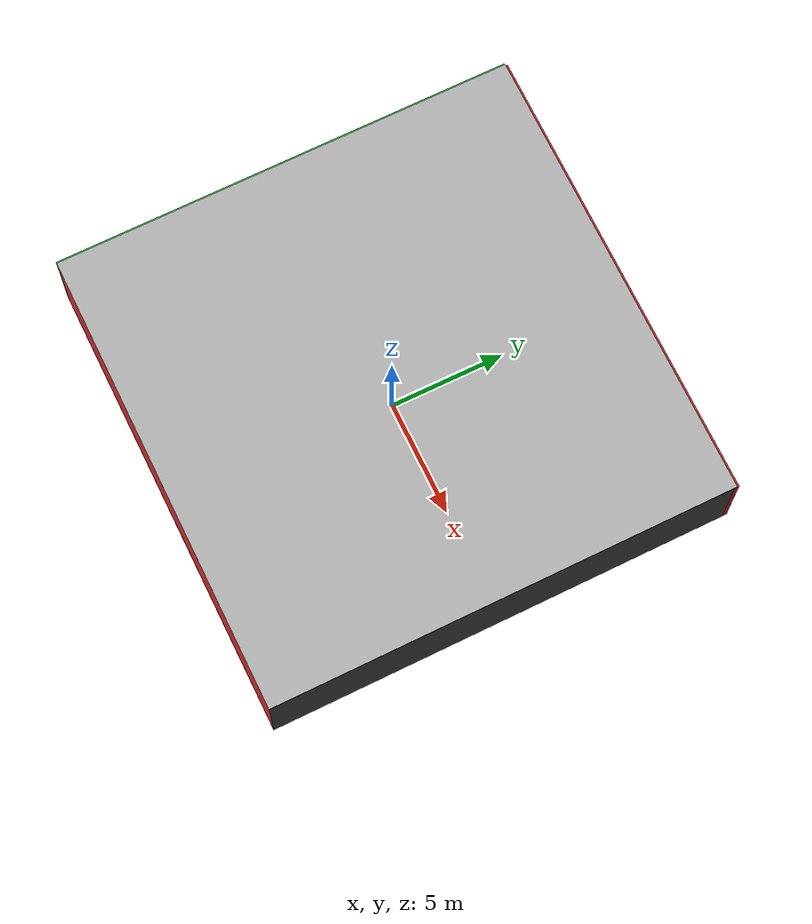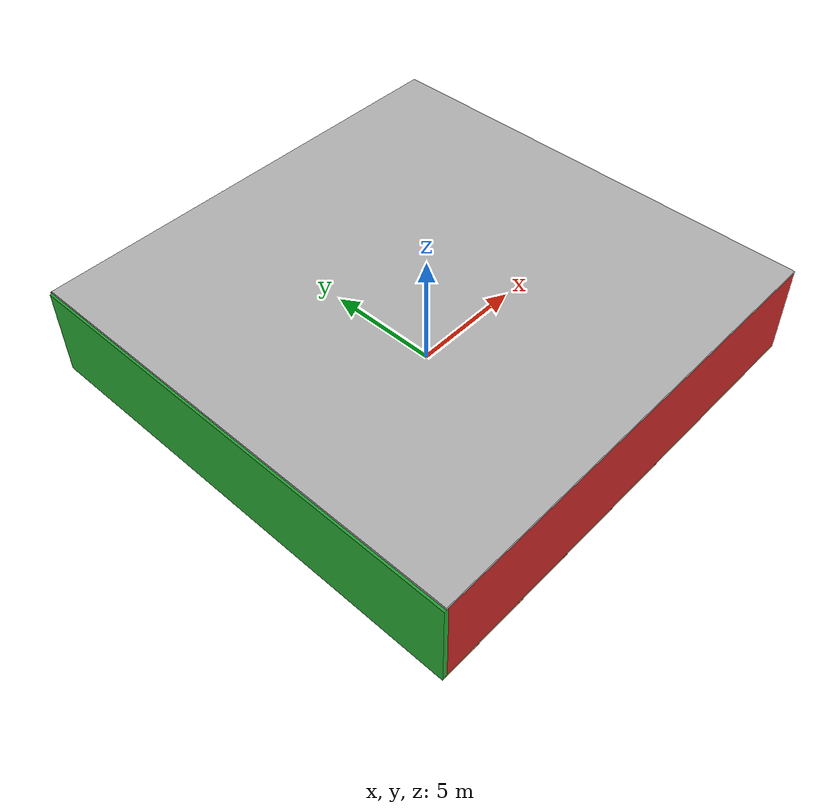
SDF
<sdf version="1.4">
 <world name="default">
  <physics type="ode">
   <max_step_size>0.001</max_step_size>
   <real_time_factor>1</real_time_factor>
   <real_time_update_rate>1000</real_time_update_rate>
   <gravity>0 0 -9.8</gravity>
  </physics>
  <scene><ambient>0.4 0.4 0.4 1</ambient><background>0.7 0.7 0.7 1</background><shadows>1</shadows></scene>
  <model name="Surrounding">
   <static>1</static>
   <link name="Ceiling">
    <collision name="Ceiling_Collision"><geometry><box><size>20 20 0.1</size></box></geometry></collision>
    <visual name="Ceiling_Visual">
     <geometry><box><size>20 20 0.1</size></box></geometry>
     <material>
      <script><uri>file://media/materials/scripts/gazebo.material</uri><name>Gazebo/LightOn</name></script>
     </material>
    </visual>
    <pose>0 0 4.05 0 0 0</pose>
   </link>
   <link name="Wall_South">
    <collision name="Wall_South_Collision">
     <geometry><box><size>20 0 4</size></box></geometry>
     <pose>0 0 2 0 -0 0</pose>
    </collision>
    <visual name="Wall_South_Visual">
     <pose>0 0 2 0 -0 0</pose>
     <geometry><box><size>20 0 4</size></box></geometry>
     <material>
      <script><uri>file://media/materials/scripts/gazebo.material</uri><name>Gazebo/Red</name></script>
     </material>
    </visual>
    <velocity_decay><linear>0</linear><angular>0</angular></velocity_decay>
    <pose>0 -10 0 0 -0 0</pose>
   </link>
   <link name="Wall_East">
    <collision name="Wall_21_Collision">
     <geometry><box><size>20 0 4</size></box></geometry>
     <pose>0 0 2 0 -0 0</pose>
    </collision>
    <visual name="Wall_21_Visual">
     <pose>0 0 2 0 -0 0</pose>
     <geometry><box><size>20 0 4</size></box></geometry>
     <material>
      <script><uri>file://media/materials/scripts/gazebo.material</uri><name>Gazebo/Road</name></script>
     </material>
    </visual>
    <velocity_decay><linear>0</linear><angular>0</angular></velocity_decay>
    <pose>10 0 0 0 -0 1.5708</pose>
   </link>
   <link name="Wall_North">
    <collision name="Wall_22_Collision">
     <geometry><box><size>20 0.2 4</size></box></geometry>
     <pose>0 0 2 0 -0 0</pose>
    </collision>
    <visual name="Wall_22_Visual">
     <pose>0 0 2 0 -0 0</pose>
     <geometry><box><size>20 0.2 4</size></box></geometry>
     <material>
      <script><uri>file://media/materials/scripts/gazebo.material</uri><name>Gazebo/RedGlow</name></script>
     </material>
    </visual>
    <velocity_decay><linear>0</linear><angular>0</angular></velocity_decay>
    <pose>0 10 0 0 -0 0</pose>
   </link>
   <link name="Wall_West">
    <collision name="Wall_23_Collision">
     <geometry><box><size>20 0.2 4</size></box></geometry>
     <pose>0 0 2 0 -0 0</pose>
    </collision>
    <visual name="Wall_23_Visual">
     <pose>0 0 2 0 -0 0</pose>
     <geometry><box><size>20 0.2 4</size></box></geometry>
     <material>
      <script><uri>file://media/materials/scripts/gazebo.material</uri><name>Gazebo/Green</name></script>
     </material>
    </visual>
    <velocity_decay><linear>0</linear><angular>0</angular></velocity_decay>
    <pose>-10 0 0 0 0 -1.5708</pose>
   </link>
   <link name="Ground_link">
    <collision name="collision">
     <pose>0 0 .05 0 -0 0</pose>
     <geometry><box><size>20 20 0.1</size></box></geometry>
    </collision>
    <visual name="visual">
     <pose>0 0 .05 0 -0 0</pose>
     <geometry><box><size>20 20 0.1</size></box></geometry>
     <material>
      <script><uri>file://media/materials/scripts/gazebo.material</uri><name>Gazebo/WoodFloor</name></script>
     </material>
    </visual>
   </link>
   <static>1</static>
  </model>
  <spherical_coordinates>
   <surface_model>EARTH_WGS84</surface_model>
   <latitude_deg>0</latitude_deg>
   <longitude_deg>0</longitude_deg>
   <elevation>0</elevation>
   <heading_deg>0</heading_deg>
  </spherical_coordinates>
  <light name="lightball_0" type="diffuse">
   <diffuse>0.8 0.8 0.8 1</diffuse>
   <specular>0.2 0.2 0.2 1</specular>
   <attenuation>
    <range>100</range>
    <constant>0.7</constant>
    <linear>0.01</linear>
    <quadratic>0.001</quadratic>
   </attenuation>
   <direction>-0.5 0.1 -0.9</direction>
   <pose>1.35763882574 -9.21228404923 0.982324884916 0 0 0</pose>
  </light>
  <light name="lightball_1" type="diffuse">
   <diffuse>0.8 0.8 0.8 1</diffuse>
   <specular>0.2 0.2 0.2 1</specular>
   <attenuation>
    <range>100</range>
    <constant>0.7</constant>
    <linear>0.01</linear>
    <quadratic>0.001</quadratic>
   </attenuation>
   <direction>-0.5 0.1 -0.9</direction>
   <pose>-0.972845840504 7.88931862364 1.30121339425 0 0 0</pose>
  </light>
  <light name="lightball_2" type="diffuse">
   <diffuse>0.8 0.8 0.8 1</diffuse>
   <specular>0.2 0.2 0.2 1</specular>
   <attenuation>
    <range>100</range>
    <constant>0.7</constant>
    <linear>0.01</linear>
    <quadratic>0.001</quadratic>
   </attenuation>
   <direction>-0.5 0.1 -0.9</direction>
   <pose>-1.59275298572 4.49265756665 1.07767703088 0 0 0</pose>
  </light>
  <light name="lightball_3" type="diffuse">
   <diffuse>0.8 0.8 0.8 1</diffuse>
   <specular>0.2 0.2 0.2 1</specular>
   <attenuation>
    <range>100</range>
    <constant>0.7</constant>
    <linear>0.01</linear>
    <quadratic>0.001</quadratic>
   </attenuation>
   <direction>-0.5 0.1 -0.9</direction>
   <pose>-1.83858677897 -0.833432498496 1.56854466534 0 0 0</pose>
  </light>
  <light name="lightball_4" type="diffuse">
   <diffuse>0.8 0.8 0.8 1</diffuse>
   <specular>0.2 0.2 0.2 1</specular>
   <attenuation>
    <range>100</range>
    <constant>0.7</constant>
    <linear>0.01</linear>
    <quadratic>0.001</quadratic>
   </attenuation>
   <direction>-0.5 0.1 -0.9</direction>
   <pose>0.474830582751 1.71482425692 3.8174958829 0 0 0</pose>
  </light>
  <light name="lightball_5" type="diffuse">
   <diffuse>0.8 0.8 0.8 1</diffuse>
   <specular>0.2 0.2 0.2 1</specular>
   <attenuation>
    <range>100</range>
    <constant>0.7</constant>
    <linear>0.01</linear>
    <quadratic>0.001</quadratic>
   </attenuation>
   <direction>-0.5 0.1 -0.9</direction>
   <pose>4.49987815104 2.33015272499 1.51431236793 0 0 0</pose>
  </light>
  <light name="lightball_6" type="diffuse">
   <diffuse>0.8 0.8 0.8 1</diffuse>
   <specular>0.2 0.2 0.2 1</specular>
   <attenuation>
    <range>100</range>
    <constant>0.7</constant>
    <linear>0.01</linear>
    <quadratic>0.001</quadratic>
   </attenuation>
   <direction>-0.5 0.1 -0.9</direction>
   <pose>-3.87857797518 -1.33511813241 3.79193569185 0 0 0</pose>
  </light>
  <light name="lightball_7" type="diffuse">
   <diffuse>0.8 0.8 0.8 1</diffuse>
   <specular>0.2 0.2 0.2 1</specular>
   <attenuation>
    <range>100</range>
    <constant>0.7</constant>
    <linear>0.01</linear>
    <quadratic>0.001</quadratic>
   </attenuation>
   <direction>-0.5 0.1 -0.9</direction>
   <pose>-7.7019188241 -7.27131972758 1.55114162401 0 0 0</pose>
  </light>
  <light name="lightball_8" type="diffuse">
   <diffuse>0.8 0.8 0.8 1</diffuse>
   <specular>0.2 0.2 0.2 1</specular>
   <attenuation>
    <range>100</range>
    <constant>0.7</constant>
    <linear>0.01</linear>
    <quadratic>0.001</quadratic>
   </attenuation>
   <direction>-0.5 0.1 -0.9</direction>
   <pose>7.08746437459 6.9127645555 3.85620517154 0 0 0</pose>
  </light>
  <light name="lightball_9" type="diffuse">
   <diffuse>0.8 0.8 0.8 1</diffuse>
   <specular>0.2 0.2 0.2 1</specular>
   <attenuation>
    <range>100</range>
    <constant>0.7</constant>
    <linear>0.01</linear>
    <quadratic>0.001</quadratic>
   </attenuation>
   <direction>-0.5 0.1 -0.9</direction>
   <pose>-2.08467434551 -1.90441849777 3.68672766286 0 0 0</pose>
  </light>
  <light name="lightball_10" type="diffuse">
   <diffuse>0.8 0.8 0.8 1</diffuse>
   <specular>0.2 0.2 0.2 1</specular>
   <attenuation>
    <range>100</range>
    <constant>0.7</constant>
    <linear>0.01</linear>
    <quadratic>0.001</quadratic>
   </attenuation>
   <direction>-0.5 0.1 -0.9</direction>
   <pose>0.369273630975 7.75466467157 2.11532915361 0 0 0</pose>
  </light>
  <light name="lightball_11" type="diffuse">
   <diffuse>0.8 0.8 0.8 1</diffuse>
   <specular>0.2 0.2 0.2 1</specular>
   <attenuation>
    <range>100</range>
    <constant>0.7</constant>
    <linear>0.01</linear>
    <quadratic>0.001</quadratic>
   </attenuation>
   <direction>-0.5 0.1 -0.9</direction>
   <pose>-1.68919567137 -2.51243844566 1.11242535633 0 0 0</pose>
  </light>
  <light name="lightball_12" type="diffuse">
   <diffuse>0.8 0.8 0.8 1</diffuse>
   <specular>0.2 0.2 0.2 1</specular>
   <attenuation>
    <range>100</range>
    <constant>0.7</constant>
    <linear>0.01</linear>
    <quadratic>0.001</quadratic>
   </attenuation>
   <direction>-0.5 0.1 -0.9</direction>
   <pose>2.27831490075 0.900419629349 1.52127672322 0 0 0</pose>
  </light>
  <include>
   <uri>model://construction_cone</uri>
   <pose>-7.26333779259 -4.20999924633 0 0 0 1.87802900534</pose>
  </include>
  <include>
   <uri>model://robocup_3Dsim_goal</uri>
   <pose>-6.71519565495 1.09186381549 0 0 0 1.65252206658</pose>
  </include>
  <include>
   <uri>model://robocup_3Dsim_goal</uri>
   <pose>-4.10279246151 1.88234922401 0 0 0 1.04786108986</pose>
  </include>
  <include><uri>model://cabinet</uri><pose>-1.31174618924 -7.82664619008 0 0 0 0.513794696909</pose></include>
  <include><uri>model://cabinet</uri><pose>2.05668536996 2.17733901338 0 0 0 1.2254903035</pose></include>
  <include><uri>model://table</uri><pose>4.41070499387 -4.75772858035 0 0 0 2.59603656621</pose></include>
  <include>
   <uri>model://construction_cone</uri>
   <pose>3.82041238915 -1.02383913274 0 0 0 0.577768594923</pose>
  </include>
  <include><uri>model://cabinet</uri><pose>5.01664760847 1.36225833291 0 0 0 0.410482388453</pose></include>
  <include><uri>model://cabinet</uri><pose>7.96161743322 -2.09683824847 0 0 0 1.78877216711</pose></include>
  <include>
   <uri>model://textured_shapes</uri>
   <pose>6.92111135754 4.92604237479 0 0 0 1.90310191417</pose>
  </include>
 </world>
</sdf>

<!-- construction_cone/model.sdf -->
<sdf version="1.5">
  <model name="Construction Cone">
    <link name="link">
      <collision name="collision">
        <geometry>
          <mesh>
            <scale>10 10 10</scale>
            <uri>file://isr-testbed/construction_cone/meshes/construction_cone.dae</uri>
          </mesh>
        </geometry>
      </collision>
      <visual name="visual">
        <geometry>
          <mesh>
            <scale>10 10 10</scale>
            <uri>file://isr-testbed/construction_cone/meshes/construction_cone.dae</uri>
          </mesh>
        </geometry>
      </visual>
    </link>
  </model>
</sdf>

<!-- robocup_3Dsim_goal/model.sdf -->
<sdf version="1.5">
  <model name="robocup_3d_goal">
    <static>true</static>
    <link name="left_post">
      <pose>0 1.05 0.45 0 0 0</pose>
      <collision name="collision">
        <geometry>
          <cylinder>
            <radius>0.05</radius>
            <length>0.9</length>
          </cylinder>
        </geometry>
      </collision>
      <visual name="visual">
        <geometry>
          <cylinder>
            <radius>0.05</radius>
            <length>0.9</length>
          </cylinder>
        </geometry>
        <material>
          <script>
            <uri>file://media/materials/scripts/gazebo.material</uri>
            <name>Gazebo/ZincYellow</name>
          </script>
        </material>
      </visual>
    </link>
    <link name="left_support_horiz_lower">
      <pose>0.30 1.05 0.01 0 0 0</pose>
      <collision name="collision">
        <geometry>
          <box>
            <size>0.50 0.02 0.02</size>
          </box>
        </geometry>
      </collision>
      <visual name="visual">
        <geometry>
          <box>
            <size>0.50 0.02 0.02</size>
          </box>
        </geometry>
        <material>
          <script>
            <uri>file://media/materials/scripts/gazebo.material</uri>
            <name>Gazebo/White</name>
          </script>
        </material>
      </visual>
    </link>
    <link name="left_support_horiz_upper">
      <pose>0.30 1.05 0.79 0 0 0</pose>
      <collision name="collision">
        <geometry>
          <box>
            <size>0.50 0.02 0.02</size>
          </box>
        </geometry>
      </collision>
      <visual name="visual">
        <geometry>
          <box>
            <size>0.50 0.02 0.02</size>
          </box>
        </geometry>
        <material>
          <script>
            <uri>file://media/materials/scripts/gazebo.material</uri>
            <name>Gazebo/White</name>
          </script>
        </material>
      </visual>
    </link>
    <link name="left_support_vertical">
      <pose>0.56 1.05 0.4 0 1.5708 0</pose>
      <collision name="collision">
        <geometry>
          <box>
            <size>0.80 0.02 0.02</size>
          </box>
        </geometry>
      </collision>
      <visual name="visual">
        <geometry>
          <box>
            <size>0.80 0.02 0.02</size>
          </box>
        </geometry>
        <material>
          <script>
            <uri>file://media/materials/scripts/gazebo.material</uri>
            <name>Gazebo/White</name>
          </script>
        </material>
      </visual>
    </link>
    <link name="right_support_horiz_lower">
      <pose>0.30 -1.05 0.01 0 0 0</pose>
      <collision name="collision">
        <geometry>
          <box>
            <size>0.50 0.02 0.02</size>
          </box>
        </geometry>
      </collision>
      <visual name="visual">
        <geometry>
          <box>
            <size>0.50 0.02 0.02</size>
          </box>
        </geometry>
        <material>
          <script>
            <uri>file://media/materials/scripts/gazebo.material</uri>
            <name>Gazebo/White</name>
          </script>
        </material>
      </visual>
    </link>
    <link name="right_support_horiz_upper">
      <pose>0.30 -1.05 0.79 0 0 0</pose>
      <collision name="collision">
        <geometry>
          <box>
            <size>0.50 0.02 0.02</size>
          </box>
        </geometry>
      </collision>
      <visual name="visual">
        <geometry>
          <box>
            <size>0.50 0.02 0.02</size>
          </box>
        </geometry>
        <material>
          <script>
            <uri>file://media/materials/scripts/gazebo.material</uri>
            <name>Gazebo/White</name>
          </script>
        </material>
      </visual>
    </link>
    <link name="right_support_vertical">
      <pose>0.56 -1.05 0.4 0 1.5708 0</pose>
      <collision name="collision">
        <geometry>
          <box>
            <size>0.80 0.02 0.02</size>
          </box>
        </geometry>
      </collision>
      <visual name="visual">
        <geometry>
          <box>
            <size>0.80 0.02 0.02</size>
          </box>
        </geometry>
        <material>
          <script>
            <uri>file://media/materials/scripts/gazebo.material</uri>
            <name>Gazebo/White</name>
          </script>
        </material>
      </visual>
    </link>
    <link name="center_support_horiz_lower">
      <pose>0.56 0 0.01 0 1.5708 0</pose>
      <collision name="collision">
        <geometry>
          <box>
            <size>0.02 2.08 0.02</size>
          </box>
        </geometry>
      </collision>
      <visual name="visual">
        <geometry>
          <box>
            <size>0.02 2.08 0.02</size>
          </box>
        </geometry>
        <material>
          <script>
            <uri>file://media/materials/scripts/gazebo.material</uri>
            <name>Gazebo/White</name>
          </script>
        </material>
      </visual>
    </link>
    <link name="center_support_horiz_upper">
      <pose>0.56 0 0.79 0 1.5708 0</pose>
      <collision name="collision">
        <geometry>
          <box>
            <size>0.02 2.08 0.02</size>
          </box>
        </geometry>
      </collision>
      <visual name="visual">
        <geometry>
          <box>
            <size>0.02 2.08 0.02</size>
          </box>
        </geometry>
        <material>
          <script>
            <uri>file://media/materials/scripts/gazebo.material</uri>
            <name>Gazebo/White</name>
          </script>
        </material>
      </visual>
    </link>
    <link name="right_post">
      <pose>0 -1.05 0.45 0 0 0</pose>
      <collision name="collision">
        <geometry>
          <cylinder>
            <radius>0.05</radius>
            <length>0.9</length>
          </cylinder>
        </geometry>
      </collision>
      <visual name="visual">
        <geometry>
          <cylinder>
            <radius>0.05</radius>
            <length>0.9</length>
          </cylinder>
        </geometry>
        <material>
          <script>
            <uri>file://media/materials/scripts/gazebo.material</uri>
            <name>Gazebo/ZincYellow</name>
          </script>
        </material>
      </visual>
    </link>
    <link name="crossbar">
      <pose>0 0 0.85 1.57 1.57 0</pose>
      <collision name="collision">
        <geometry>
          <cylinder>
            <radius>0.05</radius>
            <length>2.0</length>
          </cylinder>
        </geometry>
      </collision>
      <visual name="visual">
        <geometry>
          <cylinder>
            <radius>0.05</radius>
            <length>2.0</length>
          </cylinder>
        </geometry>
        <material>
          <script>
            <uri>file://media/materials/scripts/gazebo.material</uri>
            <name>Gazebo/ZincYellow</name>
          </script>
        </material>
      </visual>
    </link>
    <link name="center_net">
      <pose>0.56 0 0.40 0 0 0</pose>
      <collision name="collision">
        <geometry>
          <box>
            <size>0.01 2.1 0.80</size>
          </box>
        </geometry>
      </collision>
      <visual name="visual">
        <geometry>
          <box>
            <size>0.01 2.1 0.80</size>
          </box>
        </geometry>
        <material>
          <script>
            <uri>model://../model_source/models/robocup09_spl_field/materials/scripts/</uri>
            <uri>model://../model_source/models/robocup09_spl_field/materials/textures/</uri>
            <name>RoboCup/Net</name>
          </script>
        </material>
      </visual>
    </link>
    <link name="left_net">
      <pose>0.30 1.05 0.40 0 0 0</pose>
      <collision name="collision">
        <geometry>
          <box>
            <size>0.50 0.01 0.76</size>
          </box>
        </geometry>
      </collision>
      <visual name="visual">
        <geometry>
          <box>
            <size>0.50 0.01 0.76</size>
          </box>
        </geometry>
        <material>
          <script>
            <uri>model://../model_source/models/robocup09_spl_field/materials/scripts/</uri>
            <uri>model://../model_source/models/robocup09_spl_field/materials/textures/</uri>
            <name>RoboCup/Net</name>
          </script>
        </material>
      </visual>
    </link>
    <link name="right_net">
      <pose>0.30 -1.05 0.40 0 0 0</pose>
      <collision name="collision">
        <geometry>
          <box>
            <size>0.50 0.01 0.76</size>
          </box>
        </geometry>
      </collision>
      <visual name="visual">
        <geometry>
          <box>
            <size>0.50 0.01 0.76</size>
          </box>
        </geometry>
        <material>
          <script>
            <uri>model://../model_source/models/robocup09_spl_field/materials/scripts/</uri>
            <uri>model://../model_source/models/robocup09_spl_field/materials/textures/</uri>
            <name>RoboCup/Net</name>
          </script>
        </material>
      </visual>
    </link>
  </model>
</sdf>

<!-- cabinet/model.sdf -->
<sdf version="1.5">
  <model name="cabinet">
    <static>true</static>
    <link name="cabinet_bottom_plate">
      <inertial>
        <pose>0 0 -1 0 0 0</pose>
        <inertia>
          <ixx>2.050000</ixx>
          <ixy>0</ixy>
          <ixz>0</ixz>
          <iyy>2.050000</iyy>
          <iyz>0</iyz>
          <izz>2.050000</izz>
        </inertia>
        <mass>25.000000</mass>
      </inertial>
      <collision name="cabinet_bottom_plate_geom">
        <pose>0 0 0.010000 0 0 0</pose>
        <geometry>
          <box>
            <size>0.450000 0.450000 0.020000</size>
          </box>
        </geometry>
      </collision>
      <visual name="cabinet_bottom_plate_geom_visual">
        <pose>0 0 0.010000 0 0 0</pose>
        <geometry>
          <box>
            <size>0.450000 0.450000 0.020000</size>
          </box>
        </geometry>
        <material>
          <script>
            <uri>model://media/materials/scripts/gazebo.material</uri>
            <name>Gazebo/Wood</name>
          </script>
        </material>
      </visual>
      <collision name="cabinet_bottom_plate_geom_cabinet_back_plate">
        <pose>0.235000 0 0.510000 0 0 0</pose>
        <geometry>
          <box>
            <size>0.020000 0.450000 1.020000</size>
          </box>
        </geometry>
      </collision>
      <visual name="cabinet_bottom_plate_geom_cabinet_back_plate_visual">
        <pose>0.235000 0 0.510000 0 0 0</pose>
        <geometry>
          <box>
            <size>0.020000 0.450000 1.020000</size>
          </box>
        </geometry>
        <material>
          <script>
            <uri>model://media/materials/scripts/gazebo.material</uri>
            <name>Gazebo/Wood</name>
          </script>
        </material>
      </visual>
      <collision name="cabinet_bottom_plate_geom_cabinet_left_plate">
        <pose>0 0.235000 0.510000 0 0 0</pose>
        <geometry>
          <box>
            <size>0.450000 0.020000 1.020000</size>
          </box>
        </geometry>
      </collision>
      <visual name="cabinet_bottom_plate_geom_cabinet_left_plate_visual">
        <pose>0 0.235000 0.510000 0 0 0</pose>
        <geometry>
          <box>
            <size>0.450000 0.020000 1.020000</size>
          </box>
        </geometry>
        <material>
          <script>
            <uri>model://media/materials/scripts/gazebo.material</uri>
            <name>Gazebo/Wood</name>
          </script>
        </material>
      </visual>
      <collision name="cabinet_bottom_plate_geom_cabinet_middle_plate">
        <pose>0 0 0.510000 0 0 0</pose>
        <geometry>
          <box>
            <size>0.450000 0.450000 0.020000</size>
          </box>
        </geometry>
      </collision>
      <visual name="cabinet_bottom_plate_geom_cabinet_middle_plate_visual">
        <pose>0 0 0.510000 0 0 0</pose>
        <geometry>
          <box>
            <size>0.450000 0.450000 0.020000</size>
          </box>
        </geometry>
        <material>
          <script>
            <uri>model://media/materials/scripts/gazebo.material</uri>
            <name>Gazebo/Wood</name>
          </script>
        </material>
      </visual>
      <collision name="cabinet_bottom_plate_geom_cabinet_right_plate">
        <pose>0 -0.235000 0.510000 0 0 0</pose>
        <geometry>
          <box>
            <size>0.450000 0.020000 1.020000</size>
          </box>
        </geometry>
      </collision>
      <visual name="cabinet_bottom_plate_geom_cabinet_right_plate_visual">
        <pose>0 -0.235000 0.510000 0 0 0</pose>
        <geometry>
          <box>
            <size>0.450000 0.020000 1.020000</size>
          </box>
        </geometry>
        <material>
          <script>
            <uri>model://media/materials/scripts/gazebo.material</uri>
            <name>Gazebo/Wood</name>
          </script>
        </material>
      </visual>
      <collision name="cabinet_bottom_plate_geom_cabinet_top_plate">
        <pose>0 0 1.010000 0 0 0</pose>
        <geometry>
          <box>
            <size>0.450000 0.450000 0.020000</size>
          </box>
        </geometry>
      </collision>
      <visual name="cabinet_bottom_plate_geom_cabinet_top_plate_visual">
        <pose>0 0 1.010000 0 0 0</pose>
        <geometry>
          <box>
            <size>0.450000 0.450000 0.020000</size>
          </box>
        </geometry>
        <material>
          <script>
            <uri>model://media/materials/scripts/gazebo.material</uri>
            <name>Gazebo/Wood</name>
          </script>
        </material>
      </visual>
    </link>
  </model>
</sdf>

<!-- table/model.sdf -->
<sdf version="1.5">
  <model name="table">
    <static>true</static>
    <link name="link">
      <collision name="surface">
        <pose>0 0 1.0 0 0 0</pose>
        <geometry>
          <box>
            <size>1.5 0.8 0.03</size>
          </box>
        </geometry>
        <surface>
          <friction>
            <ode>
              <mu>0.6</mu>
              <mu2>0.6</mu2>
            </ode>
          </friction>
        </surface>
      </collision>
      <visual name="visual1">
        <pose>0 0 1.0 0 0 0</pose>
        <geometry>
          <box>
            <size>1.5 0.8 0.03</size>
          </box>
        </geometry>
        <material>
          <script>
            <uri>model://media/materials/scripts/gazebo.material</uri>
            <name>Gazebo/Wood</name>
          </script>
        </material>
      </visual>
      <collision name="front_left_leg">
        <pose>0.68 0.38 0.5 0 0 0</pose>
        <geometry>
          <cylinder>
            <radius>0.02</radius>
            <length>1.0</length>
          </cylinder>
        </geometry>
      </collision>
      <visual name="front_left_leg">
        <pose>0.68 0.38 0.5 0 0 0</pose>
        <geometry>
          <cylinder>
            <radius>0.02</radius>
            <length>1.0</length>
          </cylinder>
        </geometry>
        <material>
          <script>
            <uri>model://media/materials/scripts/gazebo.material</uri>
            <name>Gazebo/Grey</name>
          </script>
        </material>
      </visual>
      <collision name="front_right_leg">
        <pose>0.68 -0.38 0.5 0 0 0</pose>
        <geometry>
          <cylinder>
            <radius>0.02</radius>
            <length>1.0</length>
          </cylinder>
        </geometry>
      </collision>
      <visual name="front_right_leg">
        <pose>0.68 -0.38 0.5 0 0 0</pose>
        <geometry>
          <cylinder>
            <radius>0.02</radius>
            <length>1.0</length>
          </cylinder>
        </geometry>
        <material>
          <script>
            <uri>model://media/materials/scripts/gazebo.material</uri>
            <name>Gazebo/Grey</name>
          </script>
        </material>
      </visual>
      <collision name="back_right_leg">
        <pose>-0.68 -0.38 0.5 0 0 0</pose>
        <geometry>
          <cylinder>
            <radius>0.02</radius>
            <length>1.0</length>
          </cylinder>
        </geometry>
      </collision>
      <visual name="back_right_leg">
        <pose>-0.68 -0.38 0.5 0 0 0</pose>
        <geometry>
          <cylinder>
            <radius>0.02</radius>
            <length>1.0</length>
          </cylinder>
        </geometry>
        <material>
          <script>
            <uri>model://media/materials/scripts/gazebo.material</uri>
            <name>Gazebo/Grey</name>
          </script>
        </material>
      </visual>
      <collision name="back_left_leg">
        <pose>-0.68 0.38 0.5 0 0 0</pose>
        <geometry>
          <cylinder>
            <radius>0.02</radius>
            <length>1.0</length>
          </cylinder>
        </geometry>
      </collision>
      <visual name="back_left_leg">
        <pose>-0.68 0.38 0.5 0 0 0</pose>
        <geometry>
          <cylinder>
            <radius>0.02</radius>
            <length>1.0</length>
          </cylinder>
        </geometry>
        <material>
          <script>
            <uri>model://media/materials/scripts/gazebo.material</uri>
            <name>Gazebo/Grey</name>
          </script>
        </material>
      </visual>
    </link>
  </model>
</sdf>

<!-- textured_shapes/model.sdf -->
<sdf version="1.6">
  <model name="textured_shapes">
    <pose>0 0 0.5 0 0 0</pose>
    <link name="box">
      <pose>0 -1.5 0 0 0 0</pose>
      <collision name="collision">
        <geometry>
          <box>
            <size>1 1 1</size>
          </box>
        </geometry>
      </collision>
      <visual name="visual">
        <geometry>
          <box>
            <size>1 1 1</size>
          </box>
        </geometry>
        <material>
          <script>
            <uri>model://../model_source/models/textured_shapes/materials/scripts</uri>
            <uri>model://../model_source/models/textured_shapes/materials/textures</uri>
            <name>TexturedShape/Squares</name>
          </script>
        </material>
      </visual>
    </link>
    <link name="sphere">
      <collision name="collision">
        <geometry>
          <sphere>
            <radius>0.5</radius>
          </sphere>
        </geometry>
      </collision>
      <visual name="visual">
        <geometry>
          <sphere>
            <radius>0.5</radius>
          </sphere>
        </geometry>
        <material>
          <script>
            <uri>model://../model_source/models/textured_shapes/materials/scripts</uri>
            <uri>model://../model_source/models/textured_shapes/materials/textures</uri>
            <name>TexturedShape/Squares</name>
          </script>
        </material>
      </visual>
    </link>
    <link name="cylinder">
      <pose>0 1.5 0 0 0 0</pose>
      <collision name="collision">
        <geometry>
          <cylinder>
            <radius>0.5</radius>
            <length>1</length>
          </cylinder>
        </geometry>
      </collision>
      <visual name="visual">
        <geometry>
          <cylinder>
            <radius>0.5</radius>
            <length>1</length>
          </cylinder>
        </geometry>
        <material>
          <script>
            <uri>model://../model_source/models/textured_shapes/materials/scripts</uri>
            <uri>model://../model_source/models/textured_shapes/materials/textures</uri>
            <name>TexturedShape/Squares</name>
          </script>
        </material>
      </visual>
    </link>
  </model>
</sdf>
